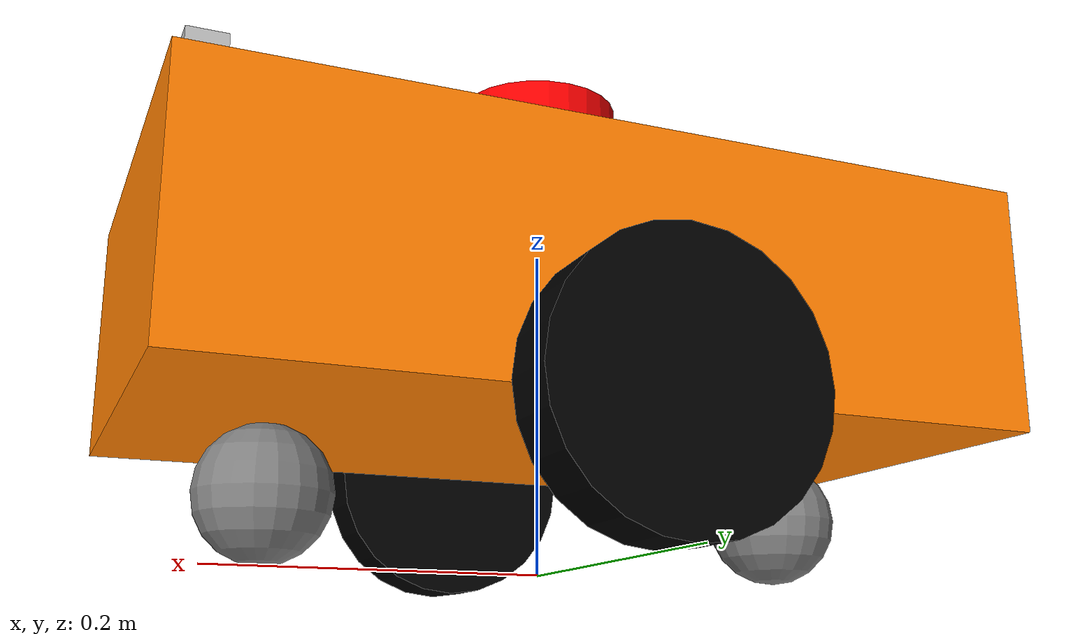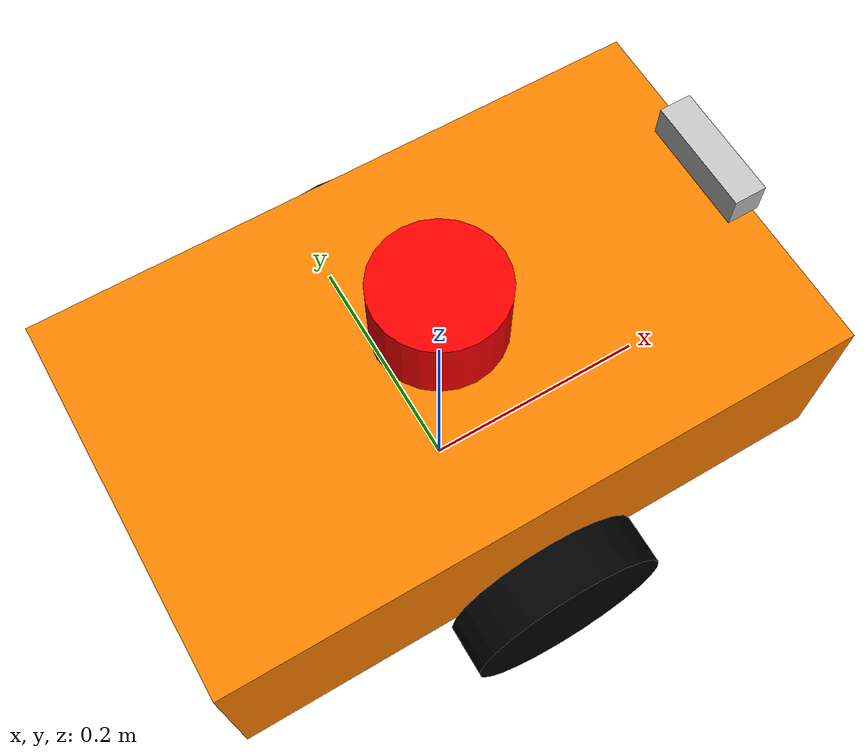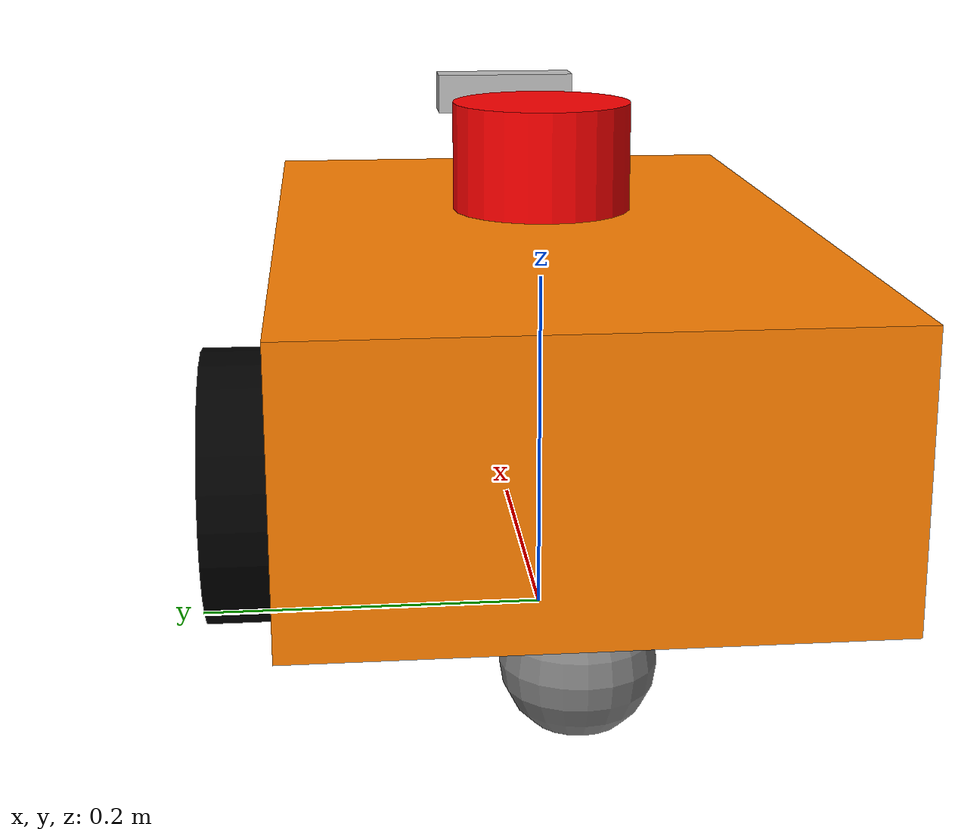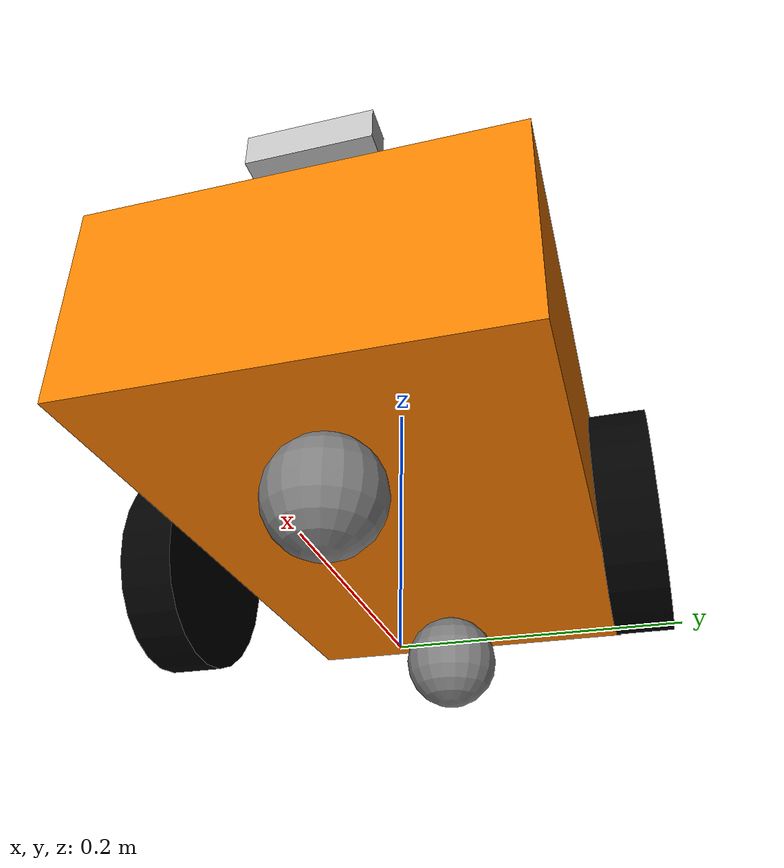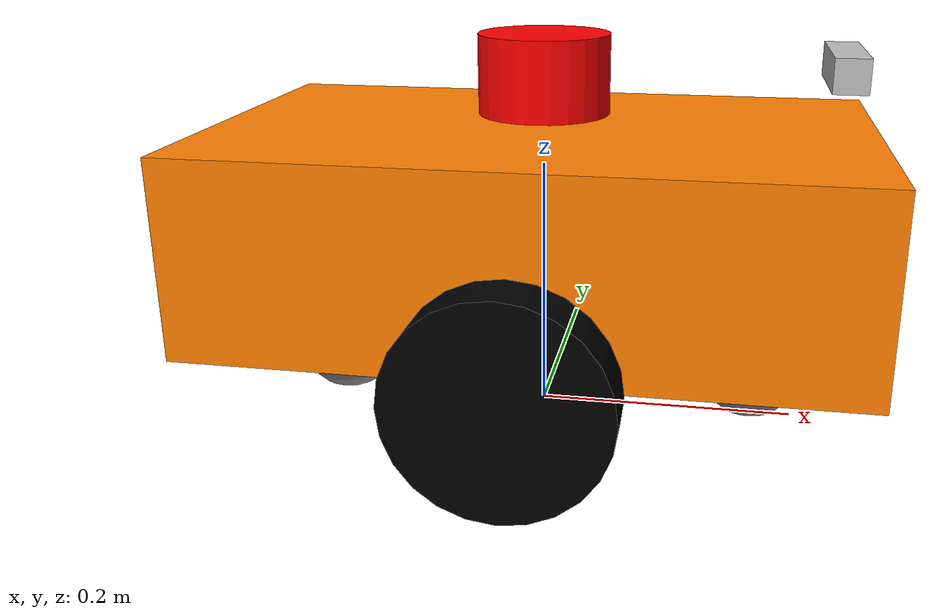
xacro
<?xml version="1.0"?>
<robot name="mapping_bot" xmlns:xacro="http://www.ros.org/wiki/xacro">
  <!-- Include base robot from navigation_demo -->
  <xacro:include filename="$(find 3d_mapping)/urdf/diff_bot.xacro" />

  <!-- Include RealSense D435 macro -->
  <xacro:include filename="$(find 3d_mapping)/urdf/realsense_d435.xacro" />

  <!-- Attach RealSense to the chassis -->
  <xacro:realsense_d435 parent="chassis">
    <!-- Positioned near the front of the 0.5m chassis, and raised slightly -->
    <origin xyz="0.22 0 0.125" rpy="0 0 0" />
  </xacro:realsense_d435>

</robot>

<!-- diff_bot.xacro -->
<robot name="diff_drive_robot" xmlns:xacro="http://www.ros.org/wiki/xacro">

  <xacro:property name="PI" value="3.1415926535897931"/>
  <xacro:property name="chassis_length" value="0.5"/>
  <xacro:property name="chassis_width" value="0.3"/>
  <xacro:property name="chassis_height" value="0.15"/>
  <xacro:property name="wheel_radius" value="0.08"/>
  <xacro:property name="wheel_width" value="0.04"/>
  <xacro:property name="wheel_separation" value="0.35"/>
  <xacro:property name="caster_radius" value="0.04"/>

  <link name="base_link"/>
  <link name="base_footprint"/>

  <joint name="base_footprint_joint" type="fixed">
    <parent link="base_footprint"/>
    <child link="base_link"/>
    <origin xyz="0 0 ${wheel_radius}" rpy="0 0 0"/>
  </joint>

  <!-- Chassis -->
  <link name="chassis">
    <visual>
      <origin xyz="0 0 0" rpy="0 0 0"/>
      <geometry>
        <box size="${chassis_length} ${chassis_width} ${chassis_height}"/>
      </geometry>
      <material name="orange">
        <color rgba="1.0 0.5 0.0 1.0"/>
      </material>
    </visual>
    <collision>
      <origin xyz="0 0 0" rpy="0 0 0"/>
      <geometry>
        <box size="${chassis_length} ${chassis_width} ${chassis_height}"/>
      </geometry>
    </collision>
    <inertial>
      <origin xyz="0 0 0" rpy="0 0 0"/>
      <mass value="5.0"/>
      <inertia
        ixx="0.04688" ixy="0.0" ixz="0.0"
        iyy="0.11354" iyz="0.0"
        izz="0.14167"/>
    </inertial>
  </link>

  <joint name="chassis_joint" type="fixed">
    <parent link="base_link"/>
    <child link="chassis"/>
    <origin xyz="0 0 ${chassis_height/2}" rpy="0 0 0"/>
  </joint>

  <!-- Left Wheel -->
  <link name="left_wheel">
    <visual>
      <origin xyz="0 0 0" rpy="${PI/2} 0 0"/>
      <geometry>
        <cylinder radius="${wheel_radius}" length="${wheel_width}"/>
      </geometry>
      <material name="black">
        <color rgba="0.0 0.0 0.0 1.0"/>
      </material>
    </visual>
    <collision>
      <origin xyz="0 0 0" rpy="${PI/2} 0 0"/>
      <geometry>
        <cylinder radius="${wheel_radius}" length="${wheel_width}"/>
      </geometry>
    </collision>
    <inertial>
      <origin xyz="0 0 0" rpy="${PI/2} 0 0"/>
      <mass value="0.5"/>
      <inertia
        ixx="0.0016"    ixy="0.0" ixz="0.0"
        iyy="0.000867"  iyz="0.0"
        izz="0.000867"/>
    </inertial>
  </link>

  <joint name="left_wheel_joint" type="continuous">
    <parent link="base_link"/>
    <child link="left_wheel"/>
    <origin xyz="0 ${wheel_separation/2} 0" rpy="0 0 0"/>
    <axis xyz="0 1 0"/>
    <dynamics damping="0.01" friction="0.01"/>
  </joint>

  <!-- Right Wheel -->
  <link name="right_wheel">
    <visual>
      <origin xyz="0 0 0" rpy="${PI/2} 0 0"/>
      <geometry>
        <cylinder radius="${wheel_radius}" length="${wheel_width}"/>
      </geometry>
      <material name="black">
        <color rgba="0.0 0.0 0.0 1.0"/>
      </material>
    </visual>
    <collision>
      <origin xyz="0 0 0" rpy="${PI/2} 0 0"/>
      <geometry>
        <cylinder radius="${wheel_radius}" length="${wheel_width}"/>
      </geometry>
    </collision>
    <inertial>
      <!-- Same fix as left wheel -->
      <origin xyz="0 0 0" rpy="${PI/2} 0 0"/>
      <mass value="0.5"/>
      <inertia
        ixx="0.0016"    ixy="0.0" ixz="0.0"
        iyy="0.000867"  iyz="0.0"
        izz="0.000867"/>
    </inertial>
  </link>

  <joint name="right_wheel_joint" type="continuous">
    <parent link="base_link"/>
    <child link="right_wheel"/>
    <origin xyz="0 ${-wheel_separation/2} 0" rpy="0 0 0"/>
    <axis xyz="0 1 0"/>
    <dynamics damping="0.01" friction="0.01"/>
  </joint>

  <!-- Front Caster Wheel -->
  <link name="caster_wheel">
    <visual>
      <origin xyz="0 0 0" rpy="0 0 0"/>
      <geometry><sphere radius="${caster_radius}"/></geometry>
      <material name="gray"><color rgba="0.5 0.5 0.5 1.0"/></material>
    </visual>
    <collision>
      <origin xyz="0 0 0" rpy="0 0 0"/>
      <geometry><sphere radius="${caster_radius}"/></geometry>
    </collision>
    <inertial>
      <origin xyz="0 0 0" rpy="0 0 0"/>
      <mass value="0.1"/>
      <!-- Sphere inertia: 2mr²/5 = 2*0.1*0.0016/5 = 0.000064 -->
      <inertia
        ixx="0.000064" ixy="0.0" ixz="0.0"
        iyy="0.000064" iyz="0.0"
        izz="0.000064"/>
    </inertial>
  </link>

  <joint name="caster_wheel_joint" type="fixed">
    <parent link="base_link"/>
    <child link="caster_wheel"/>
    <origin xyz="${chassis_length/3} 0 ${-wheel_radius + caster_radius}" rpy="0 0 0"/>
  </joint>

  <!-- Rear Caster Wheel -->
  <link name="rear_caster_wheel">
    <visual>
      <origin xyz="0 0 0" rpy="0 0 0"/>
      <geometry><sphere radius="${caster_radius}"/></geometry>
      <material name="gray"><color rgba="0.5 0.5 0.5 1.0"/></material>
    </visual>
    <collision>
      <origin xyz="0 0 0" rpy="0 0 0"/>
      <geometry><sphere radius="${caster_radius}"/></geometry>
    </collision>
    <inertial>
      <origin xyz="0 0 0" rpy="0 0 0"/>
      <mass value="0.1"/>
      <inertia
        ixx="0.000064" ixy="0.0" ixz="0.0"
        iyy="0.000064" iyz="0.0"
        izz="0.000064"/>
    </inertial>
  </link>

  <joint name="rear_caster_wheel_joint" type="fixed">
    <parent link="base_link"/>
    <child link="rear_caster_wheel"/>
    <origin xyz="${-chassis_length/3} 0 ${-wheel_radius + caster_radius}" rpy="0 0 0"/>
  </joint>

  <!-- LiDAR -->
  <link name="lidar_link">
    <visual>
      <origin xyz="0 0 0" rpy="0 0 0"/>
      <geometry><cylinder radius="0.05" length="0.06"/></geometry>
      <material name="red"><color rgba="1.0 0.0 0.0 1.0"/></material>
    </visual>
    <collision>
      <origin xyz="0 0 0" rpy="0 0 0"/>
      <geometry><cylinder radius="0.05" length="0.06"/></geometry>
    </collision>
    <inertial>
      <origin xyz="0 0 0" rpy="0 0 0"/>
      <mass value="0.2"/>
      <inertia
        ixx="0.000117" ixy="0.0" ixz="0.0"
        iyy="0.000117" iyz="0.0"
        izz="0.00025"/>
    </inertial>
  </link>

  <joint name="lidar_joint" type="fixed">
    <parent link="chassis"/>
    <child link="lidar_link"/>
    <origin xyz="0 0 ${chassis_height/2 + 0.06/2 + 0.01}" rpy="0 0 0"/>
  </joint>

  <!-- ==================== Gazebo Plugins ==================== -->

  <gazebo>
    <plugin filename="gz-sim-diff-drive-system" name="gz::sim::systems::DiffDrive">
      <left_joint>left_wheel_joint</left_joint>
      <right_joint>right_wheel_joint</right_joint>
      <wheel_separation>${wheel_separation}</wheel_separation>
      <wheel_radius>${wheel_radius}</wheel_radius>
      <odom_publish_frequency>50</odom_publish_frequency>
      <max_linear_acceleration>1.0</max_linear_acceleration>
      <max_angular_acceleration>2.0</max_angular_acceleration>
      <max_linear_velocity>0.5</max_linear_velocity>
      <max_angular_velocity>1.0</max_angular_velocity>
      <topic>cmd_vel</topic>
      <odom_topic>odom</odom_topic>
      <tf_topic>tf</tf_topic>
      <frame_id>odom</frame_id>
      <child_frame_id>base_footprint</child_frame_id>
    </plugin>
  </gazebo>

  <!-- LiDAR Plugin -->
  <gazebo reference="lidar_link">
    <sensor name="lidar" type="gpu_lidar">
      <pose>0 0 0 0 0 0</pose>
      <topic>scan</topic>
      <update_rate>10</update_rate>
      <lidar>
        <scan>
          <horizontal>
            <samples>360</samples>
            <resolution>1</resolution>
            <min_angle>-${PI}</min_angle>
            <max_angle>${PI}</max_angle>
          </horizontal>
        </scan>
        <range>
          <min>0.1</min>
          <max>10.0</max>
          <resolution>0.01</resolution>
        </range>
        <noise>
          <type>gaussian</type>
          <mean>0.0</mean>
          <stddev>0.01</stddev>
        </noise>
      </lidar>
      <alwaysOn>1</alwaysOn>
      <visualize>true</visualize>
    </sensor>
  </gazebo>

  <gazebo>
    <plugin filename="gz-sim-joint-state-publisher-system"
            name="gz::sim::systems::JointStatePublisher">
      <joint_name>left_wheel_joint</joint_name>
      <joint_name>right_wheel_joint</joint_name>
    </plugin>
  </gazebo>

  <gazebo>
    <plugin filename="gz-sim-pose-publisher-system"
            name="gz::sim::systems::PosePublisher">
      <publish_link_pose>true</publish_link_pose>
      <use_pose_vector_msg>true</use_pose_vector_msg>
      <static_publisher>true</static_publisher>
      <static_update_frequency>1</static_update_frequency>
    </plugin>
  </gazebo>

  <!-- Drive wheels: high friction, firm contact -->
  <gazebo reference="left_wheel">
    <material>Gazebo/Black</material>
    <surface>
      <friction>
        <ode>
          <mu>1.5</mu>
          <mu2>1.5</mu2>
          <slip1>0.0</slip1>
          <slip2>0.0</slip2>
        </ode>
      </friction>
      <contact>
        <ode>
          <kp>1000000.0</kp>
          <kd>1.0</kd>
          <min_depth>0.001</min_depth>
        </ode>
      </contact>
    </surface>
  </gazebo>

  <gazebo reference="right_wheel">
    <material>Gazebo/Black</material>
    <surface>
      <friction>
        <ode>
          <mu>1.5</mu>
          <mu2>1.5</mu2>
          <slip1>0.0</slip1>
          <slip2>0.0</slip2>
        </ode>
      </friction>
      <contact>
        <ode>
          <kp>1000000.0</kp>
          <kd>1.0</kd>
          <min_depth>0.001</min_depth>
        </ode>
      </contact>
    </surface>
  </gazebo>

  <!-- Caster wheels: zero friction, high damping -->
  <gazebo reference="caster_wheel">
    <material>Gazebo/Gray</material>
    <surface>
      <friction>
        <ode>
          <mu>0.0</mu>
          <mu2>0.0</mu2>
        </ode>
      </friction>
      <contact>
        <ode>
          <kp>1000000.0</kp>
          <kd>100.0</kd>
          <min_depth>0.001</min_depth>
        </ode>
      </contact>
    </surface>
  </gazebo>

  <gazebo reference="rear_caster_wheel">
    <material>Gazebo/Gray</material>
    <surface>
      <friction>
        <ode>
          <mu>0.0</mu>
          <mu2>0.0</mu2>
        </ode>
      </friction>
      <contact>
        <ode>
          <kp>1000000.0</kp>
          <kd>100.0</kd>
          <min_depth>0.001</min_depth>
        </ode>
      </contact>
    </surface>
  </gazebo>

  <gazebo reference="chassis">
    <material>Gazebo/Orange</material>
  </gazebo>

  <gazebo reference="lidar_link">
    <material>Gazebo/Red</material>
  </gazebo>

</robot>

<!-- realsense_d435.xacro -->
<robot xmlns:xacro="http://ros.org/wiki/xacro">
  <xacro:macro name="realsense_d435" params="parent *origin">

    <link name="camera_link">
      <visual>
        <origin xyz="0 0 0" rpy="0 0 0"/>
        <geometry>
          <box size="0.025 0.09 0.025"/>
        </geometry>
        <material name="silver">
          <color rgba="0.75 0.75 0.75 1.0"/>
        </material>
      </visual>
      <collision>
        <origin xyz="0 0 0" rpy="0 0 0"/>
        <geometry>
          <box size="0.025 0.09 0.025"/>
        </geometry>
      </collision>
      <inertial>
        <origin xyz="0 0 0" rpy="0 0 0"/>
        <mass value="0.072"/>
        <inertia ixx="0.0001" ixy="0.0" ixz="0.0" iyy="0.0001" iyz="0.0" izz="0.0001"/>
      </inertial>
    </link>

    <joint name="camera_joint" type="fixed">
      <xacro:insert_block name="origin" />
      <parent link="${parent}" />
      <child link="camera_link" />
    </joint>

    <link name="camera_optical_frame"/>
    <joint name="camera_optical_joint" type="fixed">
      <origin xyz="0 0 0" rpy="${-pi/2} 0 ${-pi/2}"/>
      <parent link="camera_link"/>
      <child link="camera_optical_frame"/>
    </joint>

    <link name="camera_depth_frame"/>
    <joint name="camera_depth_joint" type="fixed">
      <origin xyz="0 0 0" rpy="0 0 0"/>
      <parent link="camera_optical_frame"/>
      <child link="camera_depth_frame"/>
    </joint>

    <gazebo reference="camera_link">
      <material>Gazebo/Silver</material>
      <sensor name="rgbd_camera" type="rgbd_camera">
        <pose>0 0 0 0 0 0</pose>
        <always_on>true</always_on>
        <update_rate>15</update_rate>
        <camera>
          <horizontal_fov>1.5</horizontal_fov>
          <image>
            <width>640</width>
            <height>480</height>
            <format>R8G8B8</format>
          </image>
          <clip>
            <near>0.1</near>
            <far>10.0</far>
          </clip>
        </camera>
        <topic>camera</topic>
        <gz_frame_id>camera_link</gz_frame_id>
      </sensor>
    </gazebo>
  </xacro:macro>
</robot>
